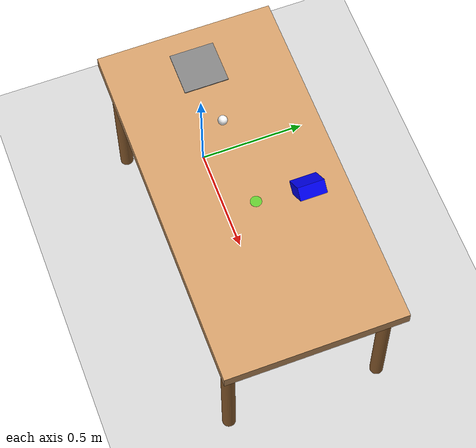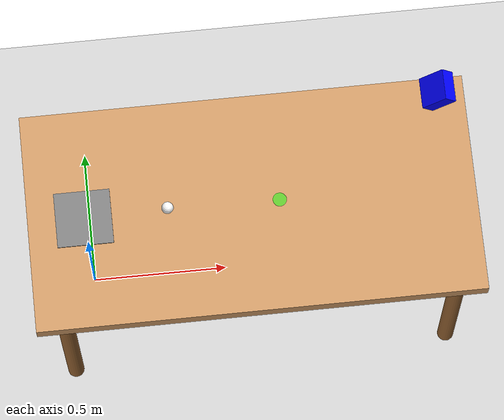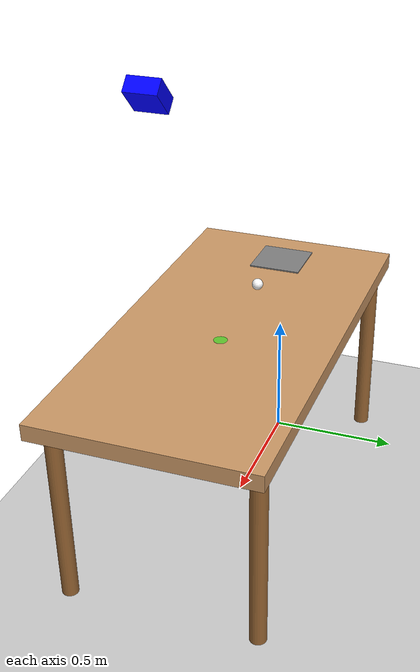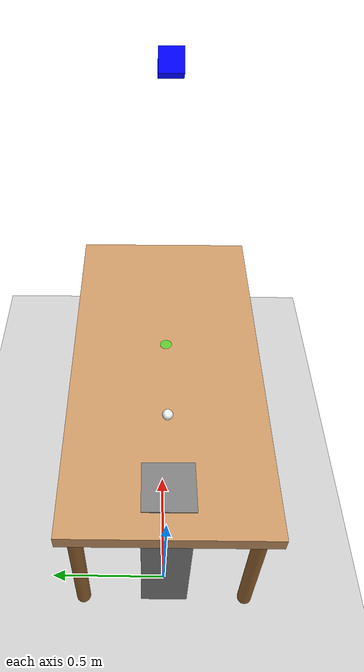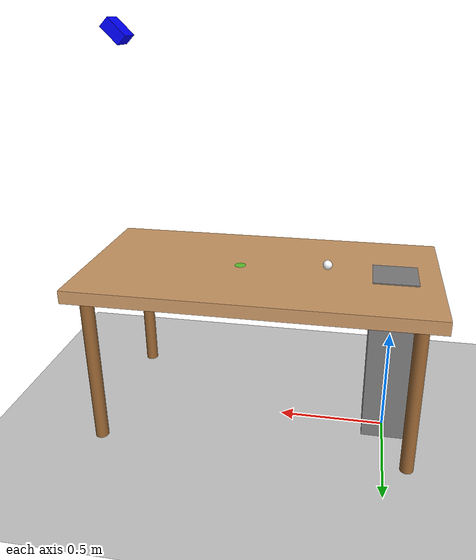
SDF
<?xml version="1.0" ?>
<sdf version="1.4">
  <world name="default">

    <!-- Link Attacher Plugin -->
    <plugin name="gazebo_link_attacher" filename="libgazebo_link_attacher.so"/>

    <!-- World standard components -->
    <gravity>0 0 -9.8</gravity>

    <!-- Ground Plane -->
    <include>
      <uri>model://ground_plane</uri>
    </include>

    <!-- Sun Light -->
    <include>
      <uri>model://sun</uri>
    </include>

    <!-- Scene Settings -->
    <scene>
      <ambient>0.8 0.8 0.8 1</ambient>
      <background>0.8 0.8 0.8 1</background>
      <shadows>false</shadows>
    </scene>

    <!-- Robot stand (ORIGINAL HEIGHT) -->
    <model name='robot_stand'>
      <static>true</static>
      <pose>0 0 0.4 0 0 0</pose>
      <link name='stand_link'>
        <inertial>
          <mass>100</mass>
          <pose>0 0 0 0 0 0</pose>
          <inertia>
            <ixx>0.01</ixx>
            <ixy>0</ixy>
            <ixz>0</ixz>
            <iyy>0.01</iyy>
            <iyz>0</iyz>
            <izz>0.01</izz>
          </inertia>
        </inertial>
        <collision name='collision'>
          <pose>0 0 0 0 0 0</pose>
          <geometry>
            <box>
              <size>0.2 0.2 0.8</size>
            </box>
          </geometry>
          <surface>
            <friction>
              <ode>
                <mu>1</mu>
                <mu2>1</mu2>
              </ode>
            </friction>
          </surface>
        </collision>
        <visual name='visual'>
          <pose>0 0 0 0 0 0</pose>
          <geometry>
            <box>
              <size>0.2 0.2 0.8</size>
            </box>
          </geometry>
          <material>
            <ambient>0.5 0.5 0.5 1</ambient>
            <diffuse>0.5 0.5 0.5 1</diffuse>
            <specular>0.1 0.1 0.1 1</specular>
          </material>
        </visual>
      </link>
    </model>

    <!-- Front table -->
    <model name='target_table_1'>
      <static>true</static>
      <pose>0.6 0 0.035 0 0 0</pose>  <!-- ✅ Changed from (0, 0.3, 0) -->
      <link name='table_link'>
        <!-- Table top -->
        <visual name='table_top'>
          <pose>0 0 0.73 0 0 0</pose>
          <geometry>
            <box>
              <size>1.6 0.8 0.06</size>
            </box>
          </geometry>
          <material>
            <ambient>0.8 0.6 0.4 1</ambient>
            <diffuse>0.8 0.6 0.4 1</diffuse>
          </material>
        </visual>
        <collision name='table_collision'>
          <pose>0 0 0.73 0 0 0</pose>
          <geometry>
            <box>
              <size>1.6 0.8 0.06</size>
            </box>
          </geometry>
          <surface>
            <friction>
              <ode>
                <mu>1</mu>
                <mu2>1</mu2>
              </ode>
            </friction>
          </surface>
        </collision>

        <!-- Leg 1 (front-left) -->
        <visual name='leg1'>
          <pose>0.7 0.35 0.365 0 0 0</pose>
          <geometry>
            <cylinder>
              <radius>0.03</radius>
              <length>0.73</length>
            </cylinder>
          </geometry>
          <material>
            <ambient>0.6 0.4 0.2 1</ambient>
            <diffuse>0.6 0.4 0.2 1</diffuse>
          </material>
        </visual>
        <collision name='leg1_collision'>
          <pose>0.7 0.35 0.365 0 0 0</pose>
          <geometry>
            <cylinder>
              <radius>0.03</radius>
              <length>0.73</length>
            </cylinder>
          </geometry>
        </collision>

        <!-- Leg 2 (front-right) -->
        <visual name='leg2'>
          <pose>-0.7 0.35 0.365 0 0 0</pose>
          <geometry>
            <cylinder>
              <radius>0.03</radius>
              <length>0.73</length>
            </cylinder>
          </geometry>
          <material>
            <ambient>0.6 0.4 0.2 1</ambient>
            <diffuse>0.6 0.4 0.2 1</diffuse>
          </material>
        </visual>
        <collision name='leg2_collision'>
          <pose>-0.7 0.35 0.365 0 0 0</pose>
          <geometry>
            <cylinder>
              <radius>0.03</radius>
              <length>0.73</length>
            </cylinder>
          </geometry>
        </collision>

        <!-- Leg 3 (back-left) -->
        <visual name='leg3'>
          <pose>0.7 -0.35 0.365 0 0 0</pose>
          <geometry>
            <cylinder>
              <radius>0.03</radius>
              <length>0.73</length>
            </cylinder>
          </geometry>
          <material>
            <ambient>0.6 0.4 0.2 1</ambient>
            <diffuse>0.6 0.4 0.2 1</diffuse>
          </material>
        </visual>
        <collision name='leg3_collision'>
          <pose>0.7 -0.35 0.365 0 0 0</pose>
          <geometry>
            <cylinder>
              <radius>0.03</radius>
              <length>0.73</length>
            </cylinder>
          </geometry>
        </collision>

        <!-- Leg 4 (back-right) -->
        <visual name='leg4'>
          <pose>-0.7 -0.35 0.365 0 0 0</pose>
          <geometry>
            <cylinder>
              <radius>0.03</radius>
              <length>0.73</length>
            </cylinder>
          </geometry>
          <material>
            <ambient>0.6 0.4 0.2 1</ambient>
            <diffuse>0.6 0.4 0.2 1</diffuse>
          </material>
        </visual>
        <collision name='leg4_collision'>
          <pose>-0.7 -0.35 0.365 0 0 0</pose>
          <geometry>
            <cylinder>
              <radius>0.03</radius>
              <length>0.73</length>
            </cylinder>
          </geometry>
        </collision>
      </link>
    </model>

    <!-- Golf Ball on Front Table -->
    <model name="golf_ball">
      <pose>0.3 0 0.8264 0 0 0</pose>
      <link name="ball_link">
        <collision name="ball_collision">
          <geometry>
            <sphere>
              <radius>0.0214</radius>
            </sphere>
          </geometry>
          <surface>
            <friction>
              <ode>
                <mu>0.5</mu>
                <mu2>0.5</mu2>
              </ode>
            </friction>
          </surface>
        </collision>
        <visual name="ball_visual">
          <geometry>
            <sphere>
              <radius>0.0214</radius>
            </sphere>
          </geometry>
          <material>
            <ambient>1 1 1 1</ambient>
            <diffuse>1 1 1 1</diffuse>
          </material>
        </visual>
        <inertial>
          <mass>0.046</mass>
          <inertia>
            <ixx>0.00001</ixx>
            <ixy>0</ixy>
            <ixz>0</ixz>
            <iyy>0.00001</iyy>
            <iyz>0</iyz>
            <izz>0.00001</izz>
          </inertia>
        </inertial>
      </link>
    </model>

    <!-- Green Mark on Front Table -->
    <model name="target_marker">
      <pose>0.7 0 0.796 0 0 0</pose>
      <static>true</static>
      <link name="marker_link">
        <visual name="marker_visual">
          <geometry>
            <cylinder>
              <radius>0.025</radius>
              <length>0.002</length>
            </cylinder>
          </geometry>
          <material>
            <ambient>0 1 0 0.5</ambient>
            <diffuse>0 1 0 0.5</diffuse>
          </material>
        </visual>
      </link>
    </model>

    <!-- Physics settings -->
    <physics type="ode">
      <max_step_size>0.001</max_step_size>
      <real_time_factor>1.0</real_time_factor>
      <real_time_update_rate>1000</real_time_update_rate>
      <gravity>0 0 -9.81</gravity>
    </physics>

    <!-- GUI settings -->
    <gui fullscreen="0">
      <camera name="user_camera">
        <pose>2.0 2.0 2.0 0 0.5 -2.4</pose>
        <view_controller>orbit</view_controller>
      </camera>
    </gui>

    <!-- ✅ OVERHEAD CAMERA: RGB for visualization, Depth for data -->
    <model name='overhead_camera'>
      <static>1</static>
      <!-- Position: Above table center, looking down at 45° angle -->
      <!-- Table is at y=0.3, camera at y=0.85 (0.55m behind table center) -->
      <pose>1.2 0 1.8 0 0.785398 3.14159</pose>  <!-- x y z roll pitch yaw -->

      <link name='camera_link'>
        <!-- Camera body visual -->
        <visual name='camera_visual'>
          <geometry>
            <box>
              <size>0.1 0.1 0.05</size>
            </box>
          </geometry>
          <material>
            <ambient>0 0 1 1</ambient>
            <diffuse>0 0 1 1</diffuse>
          </material>
        </visual>

        <!-- ✅ RGB Camera: ONLY for ray visualization (NO ROS2 publishing) -->
        <sensor name="rgb_sensor" type="camera">
          <always_on>true</always_on>
          <update_rate>30</update_rate>
          <visualize>true</visualize>  <!-- ✅ Shows rays in Gazebo -->
          <camera>
            <horizontal_fov>1.047</horizontal_fov>  <!-- ✅ Match depth camera FOV -->
            <image>
              <width>1280</width>
              <height>720</height>
              <format>R8G8B8</format>
            </image>
            <clip>
              <near>0.1</near>
              <far>3.0</far>  <!-- ✅ Shorter for cleaner ray visualization -->
            </clip>
          </camera>
          <!-- ✅ NO PLUGIN = No ROS2 topics published -->
        </sensor>

        <!-- ✅ Depth Camera: For actual data (publishes to ROS2) -->
        <sensor name='depth_sensor' type='depth'>
          <always_on>1</always_on>
          <update_rate>30</update_rate>
          <visualize>0</visualize>  <!-- ✅ Don't visualize (RGB already shows rays) -->
          <camera>
            <horizontal_fov>1.57</horizontal_fov>
            <image>
              <width>1280</width>
              <height>720</height>
            </image>
            <clip>
              <near>0.1</near>
              <far>10</far>
            </clip>
          </camera>

          <!-- ✅ Plugin publishes depth data to ROS2 -->
          <plugin name='camera_plugin' filename='libgazebo_ros_camera.so'>
            <ros>
              <namespace>overhead</namespace>
              <remapping>camera/image_raw:=depth_sensor/image_raw</remapping>
              <remapping>camera/camera_info:=depth_sensor/camera_info</remapping>
              <remapping>camera/depth/image_raw:=depth_sensor/depth/image_raw</remapping>
              <remapping>camera/depth/camera_info:=depth_sensor/depth/camera_info</remapping>
              <remapping>camera/points:=depth_sensor/points</remapping>
            </ros>
            <camera_name>depth_sensor</camera_name>
            <frame_name>camera_link_optical</frame_name>
            <hack_baseline>0.07</hack_baseline>
            <min_depth>0.1</min_depth>
            <max_depth>10.0</max_depth>
          </plugin>
        </sensor>

        <self_collide>0</self_collide>
        <enable_wind>0</enable_wind>
        <kinematic>0</kinematic>
      </link>
    </model>

  </world>
</sdf>
